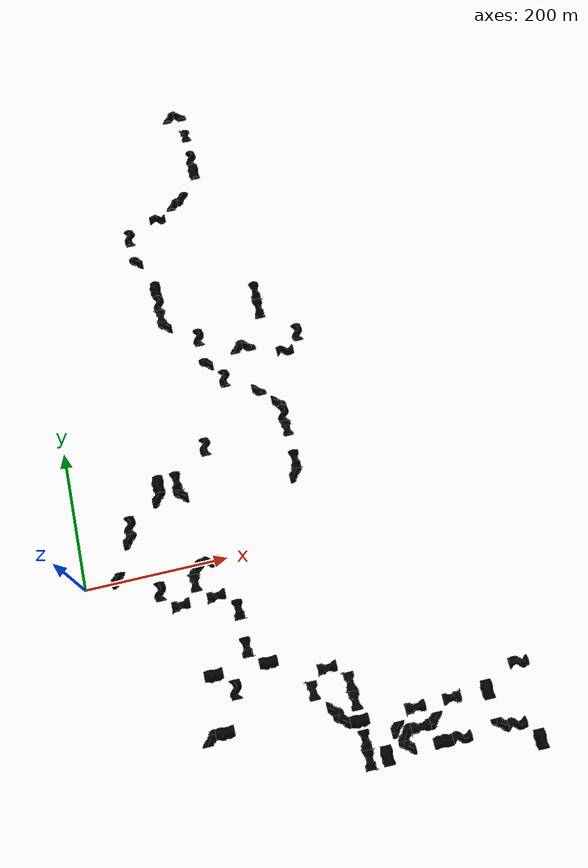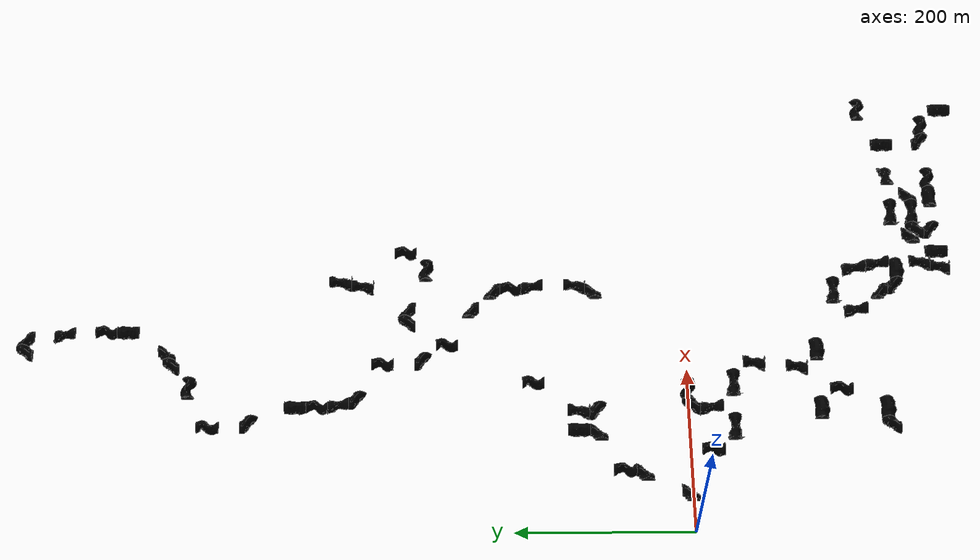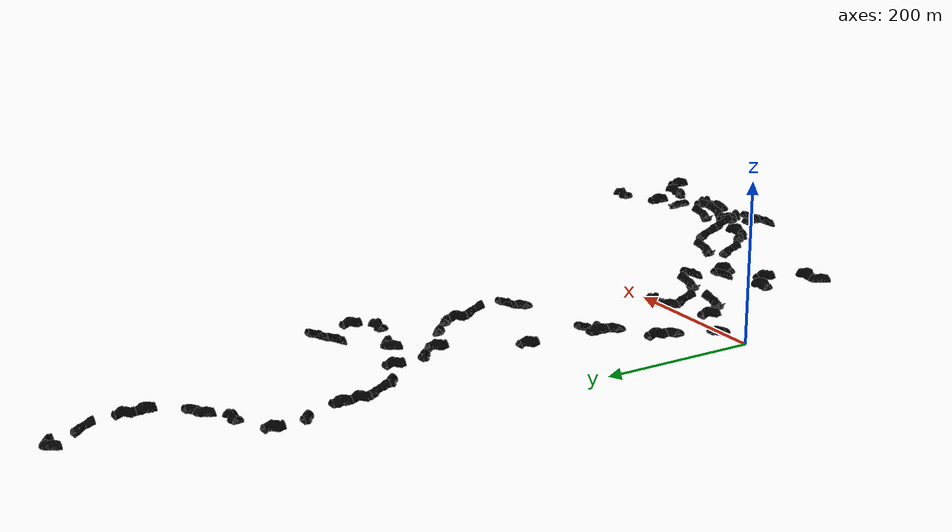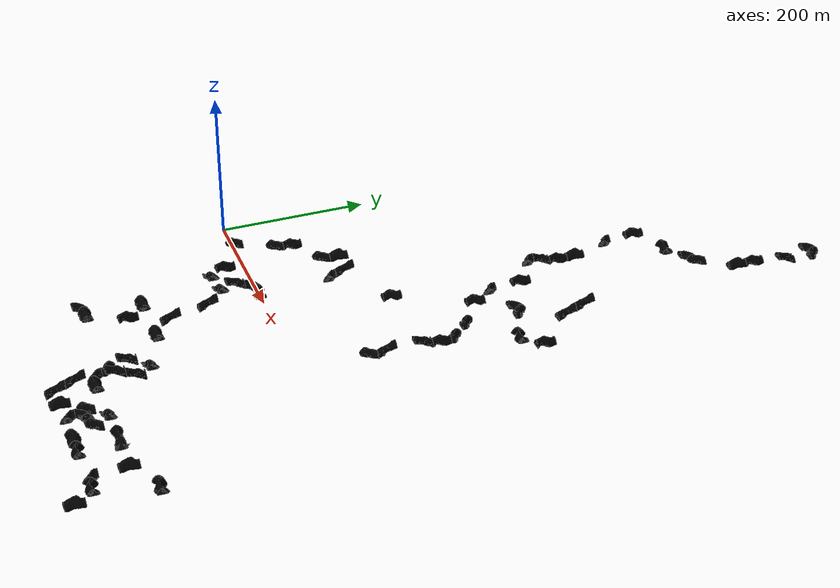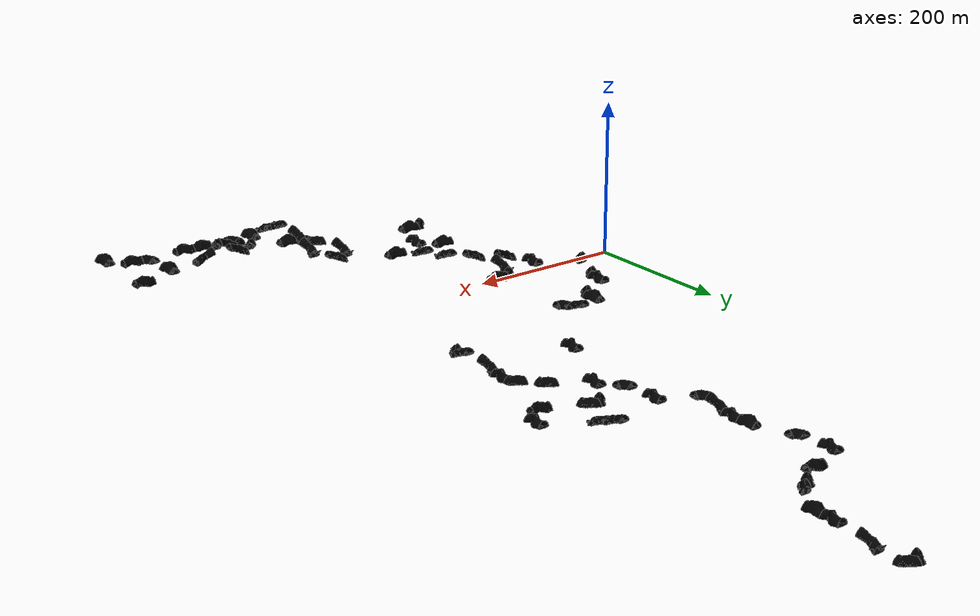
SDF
<sdf version="1.6">
 <world name="cave_circuit_01">
  <physics name="1ms" type="ode">
   <max_step_size>0.004</max_step_size>
   <real_time_factor>1.0</real_time_factor>
  </physics>
  <scene>
   <ambient>0.1 0.1 0.1 1.0</ambient>
   <background>0 0 0 1.0</background>
   <grid>false</grid>
   <origin_visual>false</origin_visual>
  </scene>
  <atmosphere type="adiabatic">
   <temperature>288</temperature>
   <temperature_gradient>0.3</temperature_gradient>
  </atmosphere>
  <plugin filename="gz-sim-physics-system" name="gz::sim::systems::Physics"/>
  <plugin filename="gz-sim-scene-broadcaster-system" name="gz::sim::systems::SceneBroadcaster"/>
  <plugin filename="gz-sim-imu-system" name="gz::sim::systems::Imu"/>
  <plugin filename="gz-sim-sensors-system" name="gz::sim::systems::Sensors">
   <render_engine>ogre2</render_engine>
  </plugin>
  <model name="robot_diferencial">
   <frame name="lidar_frame" attached_to="chassis"><pose>0.8 0 0.5 0 0 0</pose></frame>
   <link name="chassis">
    <pose relative_to="__model__">0.5 0 0.4 0 0 0</pose>
    <inertial>
     <mass>1.14395</mass>
     <inertia>
      <ixx>0.095329</ixx>
      <ixy>0</ixy>
      <ixz>0</ixz>
      <iyy>0.381317</iyy>
      <iyz>0</iyz>
      <izz>0.476646</izz>
     </inertia>
    </inertial>
    <visual name="visual">
     <geometry><box><size>2.0 1.0 0.5</size></box></geometry>
     <material>
      <ambient>0.0 0.0 1.0 1</ambient>
      <diffuse>0.0 0.0 1.0 1</diffuse>
      <specular>0.0 0.0 1.0 1</specular>
     </material>
    </visual>
    <collision name="collision"><geometry><box><size>2.0 1.0 0.5</size></box></geometry></collision>
    <sensor name="imu_sensor" type="imu">
     <always_on>1</always_on>
     <update_rate>1</update_rate>
     <visualize>true</visualize>
     <topic>imu</topic>
    </sensor>
    <sensor name="front_camera" type="camera">
     <pose>0.9 0 0.6 0 0 0</pose>
     <camera>
      <horizontal_fov>1.047</horizontal_fov>
      <image><width>640</width><height>480</height><format>R8G8B8</format></image>
      <clip><near>0.1</near><far>100</far></clip>
     </camera>
     <always_on>true</always_on>
     <update_rate>30</update_rate>
     <visualize>true</visualize>
     <topic>camera/image_raw</topic>
    </sensor>
    <sensor name="depth_camera" type="depth_camera">
     <pose relative_to="chassis">0.9 0 0.7 0 0 0</pose>
     <camera>
      <horizontal_fov>1.047</horizontal_fov>
      <image><width>640</width><height>480</height><format>R_FLOAT32</format></image>
      <clip><near>0.1</near><far>20.0</far></clip>
     </camera>
     <always_on>1</always_on>
     <update_rate>30</update_rate>
     <visualize>true</visualize>
     <topic>camera/depth/image_raw</topic>
    </sensor>
    <sensor name="gpu_lidar" type="gpu_lidar">
     <pose relative_to="lidar_frame">0 0 0 0 0 0</pose>
     <topic>lidar</topic>
     <update_rate>10</update_rate>
     <ray>
      <scan>
       <horizontal>
        <samples>1024</samples>
        <resolution>1</resolution>
        <min_angle>-3.14159</min_angle>
        <max_angle>3.14159</max_angle>
       </horizontal>
       <vertical>
        <samples>16</samples>
        <resolution>1</resolution>
        <min_angle>-0.261799</min_angle>
        <max_angle>0.261799</max_angle>
       </vertical>
      </scan>
      <range><min>0.08</min><max>100.0</max><resolution>0.01</resolution></range>
     </ray>
     <always_on>1</always_on>
     <visualize>true</visualize>
    </sensor>
   </link>
   <link name="left_wheel">
    <pose relative_to="chassis">-0.5 0.6 0 -1.5707 0 0</pose>
    <inertial>
     <mass>1</mass>
     <inertia><ixx>0.043333</ixx><ixy>0</ixy><ixz>0</ixz><iyy>0.043333</iyy><iyz>0</iyz><izz>0.08</izz></inertia>
    </inertial>
    <visual name="visual">
     <geometry><cylinder><radius>0.4</radius><length>0.2</length></cylinder></geometry>
     <material>
      <ambient>1.0 0.0 0.0 1</ambient>
      <diffuse>1.0 0.0 0.0 1</diffuse>
      <specular>1.0 0.0 0.0 1</specular>
     </material>
    </visual>
    <collision name="collision">
     <geometry><cylinder><radius>0.4</radius><length>0.2</length></cylinder></geometry>
    </collision>
   </link>
   <link name="right_wheel">
    <pose relative_to="chassis">-0.5 -0.6 0 -1.5707 0 0</pose>
    <inertial>
     <mass>1</mass>
     <inertia><ixx>0.043333</ixx><ixy>0</ixy><ixz>0</ixz><iyy>0.043333</iyy><iyz>0</iyz><izz>0.08</izz></inertia>
    </inertial>
    <visual name="visual">
     <geometry><cylinder><radius>0.4</radius><length>0.2</length></cylinder></geometry>
     <material>
      <ambient>1.0 0.0 0.0 1</ambient>
      <diffuse>1.0 0.0 0.0 1</diffuse>
      <specular>1.0 0.0 0.0 1</specular>
     </material>
    </visual>
    <collision name="collision">
     <geometry><cylinder><radius>0.4</radius><length>0.2</length></cylinder></geometry>
    </collision>
   </link>
   <link name="caster">
    <pose relative_to="chassis">0.8 0 -0.2 0 0 0</pose>
    <inertial>
     <mass>1</mass>
     <inertia><ixx>0.016</ixx><ixy>0</ixy><ixz>0</ixz><iyy>0.016</iyy><iyz>0</iyz><izz>0.016</izz></inertia>
    </inertial>
    <visual name="visual">
     <geometry><sphere><radius>0.2</radius></sphere></geometry>
     <material>
      <ambient>0.0 1 0.0 1</ambient>
      <diffuse>0.0 1 0.0 1</diffuse>
      <specular>0.0 1 0.0 1</specular>
     </material>
    </visual>
    <collision name="collision"><geometry><sphere><radius>0.2</radius></sphere></geometry></collision>
   </link>
   <joint name="left_wheel_joint" type="revolute">
    <pose relative_to="left_wheel"/>
    <parent>chassis</parent>
    <child>left_wheel</child>
    <axis><xyz expressed_in="__model__">0 1 0</xyz></axis>
   </joint>
   <joint name="right_wheel_joint" type="revolute">
    <pose relative_to="right_wheel"/>
    <parent>chassis</parent>
    <child>right_wheel</child>
    <axis><xyz expressed_in="__model__">0 1 0</xyz></axis>
   </joint>
   <joint name="caster_wheel" type="ball"><parent>chassis</parent><child>caster</child></joint>
   <plugin filename="gz-sim-diff-drive-system" name="gz::sim::systems::DiffDrive">
    <left_joint>left_wheel_joint</left_joint>
    <right_joint>right_wheel_joint</right_joint>
    <wheel_separation>1.2</wheel_separation>
    <wheel_radius>0.4</wheel_radius>
    <odom_publish_frequency>1</odom_publish_frequency>
    <topic>/turtle1/cmd_vel</topic>
   </plugin>
  </model>
  <include>
   <static>true</static>
   <name>tile_3</name>
   <pose>75 50 0 0 0 -0</pose>
   <uri>https://fuel.ignitionrobotics.org/1.0/OpenRobotics/models/Cave Corner 02 Lights Type B</uri>
  </include>
  <include>
   <static>true</static>
   <name>tile_5</name>
   <pose>125 125 0 0 -0 0</pose>
   <uri>https://fuel.ignitionrobotics.org/1.0/OpenRobotics/models/Cave Straight 04 Lights Type B</uri>
  </include>
  <include>
   <static>true</static>
   <name>tile_7</name>
   <pose>125 100 0 0 0 -0</pose>
   <uri>https://fuel.ignitionrobotics.org/1.0/OpenRobotics/models/Cave Corner 02 Lights Type B</uri>
  </include>
  <include>
   <static>true</static>
   <name>tile_8</name>
   <pose>75 75 0 0 -0 0</pose>
   <uri>https://fuel.ignitionrobotics.org/1.0/OpenRobotics/models/Cave Straight 03 Type B</uri>
  </include>
  <include>
   <static>true</static>
   <name>tile_9</name>
   <pose>50 0 0 0 0 -0</pose>
   <uri>https://fuel.ignitionrobotics.org/1.0/OpenRobotics/models/Cave Corner 02 Lights Type B</uri>
  </include>
  <include>
   <static>true</static>
   <name>tile_10</name>
   <pose>150 -25 0 0 0 -0</pose>
   <uri>https://fuel.ignitionrobotics.org/1.0/OpenRobotics/models/Cave Elevation Lights Type B</uri>
  </include>
  <include>
   <static>true</static>
   <name>tile_17</name>
   <pose>175 0 0 0 0 -1.5708</pose>
   <uri>https://fuel.ignitionrobotics.org/1.0/OpenRobotics/models/Cave Straight 03 Type B</uri>
  </include>
  <include>
   <static>true</static>
   <name>tile_18</name>
   <pose>100 -25 0 0 0 -0</pose>
   <uri>https://fuel.ignitionrobotics.org/1.0/OpenRobotics/models/Cave Straight 03 Type B</uri>
  </include>
  <include>
   <static>true</static>
   <name>tile_22</name>
   <pose>150 0 0 0 -0 3.14159</pose>
   <uri>https://fuel.ignitionrobotics.org/1.0/OpenRobotics/models/Cave Corner 02 Lights Type B</uri>
  </include>
  <include>
   <static>true</static>
   <name>tile_24</name>
   <pose>325 100 -30 0 -0 0</pose>
   <uri>https://fuel.ignitionrobotics.org/1.0/OpenRobotics/models/Cave Corner 02 Lights Type B</uri>
  </include>
  <include>
   <static>true</static>
   <name>tile_25</name>
   <pose>300 250 -30 0 -0 1.5708</pose>
   <uri>https://fuel.ignitionrobotics.org/1.0/OpenRobotics/models/Cave Corner 02 Lights Type B</uri>
  </include>
  <include>
   <static>true</static>
   <name>tile_26</name>
   <pose>325 225 -30 0 -0 1.5708</pose>
   <uri>https://fuel.ignitionrobotics.org/1.0/OpenRobotics/models/Cave Corner 02 Lights Type B</uri>
  </include>
  <include>
   <static>true</static>
   <name>tile_28</name>
   <pose>325 200 -30 0 0 -0</pose>
   <uri>https://fuel.ignitionrobotics.org/1.0/OpenRobotics/models/Cave Straight 03 Type B</uri>
  </include>
  <include>
   <static>true</static>
   <name>tile_29</name>
   <pose>325 175 -30 0 0 -0</pose>
   <uri>https://fuel.ignitionrobotics.org/1.0/OpenRobotics/models/Cave Elevation Lights Type B</uri>
  </include>
  <include>
   <static>true</static>
   <name>tile_30</name>
   <pose>325 125 -30 0 -0 3.14159</pose>
   <uri>https://fuel.ignitionrobotics.org/1.0/OpenRobotics/models/Cave Elevation Lights Type B</uri>
  </include>
  <include>
   <static>true</static>
   <name>tile_38</name>
   <pose>200 175 -30 0 0 -3.14159</pose>
   <uri>https://fuel.ignitionrobotics.org/1.0/OpenRobotics/models/Cave Straight 03 Type B</uri>
  </include>
  <include>
   <static>true</static>
   <name>tile_40</name>
   <pose>125 -50 0 0 -0 1.5708</pose>
   <uri>https://fuel.ignitionrobotics.org/1.0/OpenRobotics/models/Cave Elevation Lights Type B</uri>
  </include>
  <include>
   <static>true</static>
   <name>tile_41</name>
   <pose>175 -50 10 0 -0 1.5708</pose>
   <uri>https://fuel.ignitionrobotics.org/1.0/OpenRobotics/models/Cave Elevation Lights Type B</uri>
  </include>
  <include>
   <static>true</static>
   <name>tile_46</name>
   <pose>150 125 -10 0 -0 3.14159</pose>
   <uri>https://fuel.ignitionrobotics.org/1.0/OpenRobotics/models/Cave Elevation Lights Type B</uri>
  </include>
  <include>
   <static>true</static>
   <name>tile_47</name>
   <pose>150 100 -10 0 0 -1.5708</pose>
   <uri>https://fuel.ignitionrobotics.org/1.0/OpenRobotics/models/Cave Corner 02 Lights Type B</uri>
  </include>
  <include>
   <static>true</static>
   <name>tile_51</name>
   <pose>250 275 -30 0 -0 3.14159</pose>
   <uri>https://fuel.ignitionrobotics.org/1.0/OpenRobotics/models/Cave Straight 03 Type B</uri>
  </include>
  <include>
   <static>true</static>
   <name>tile_53</name>
   <pose>225 300 -30 0 0 -1.5708</pose>
   <uri>https://fuel.ignitionrobotics.org/1.0/OpenRobotics/models/Cave Corner 02 Lights Type B</uri>
  </include>
  <include>
   <static>true</static>
   <name>tile_54</name>
   <pose>275 325 -30 0 0 -3.14159</pose>
   <uri>https://fuel.ignitionrobotics.org/1.0/OpenRobotics/models/Cave Corner 02 Lights Type B</uri>
  </include>
  <include>
   <static>true</static>
   <name>tile_55</name>
   <pose>300 325 -30 0 -0 1.5708</pose>
   <uri>https://fuel.ignitionrobotics.org/1.0/OpenRobotics/models/Cave Corner 02 Lights Type B</uri>
  </include>
  <include>
   <static>true</static>
   <name>tile_58</name>
   <pose>350 300 -30 0 0 -1.5708</pose>
   <uri>https://fuel.ignitionrobotics.org/1.0/OpenRobotics/models/Cave Straight 03 Type B</uri>
  </include>
  <include>
   <static>true</static>
   <name>tile_63</name>
   <pose>375 325 -30 0 -0 0</pose>
   <uri>https://fuel.ignitionrobotics.org/1.0/OpenRobotics/models/Cave Straight 03 Type B</uri>
  </include>
  <include>
   <static>true</static>
   <name>tile_65</name>
   <pose>325 400 -20 0 -0 3.14159</pose>
   <uri>https://fuel.ignitionrobotics.org/1.0/OpenRobotics/models/Cave Elevation Type B</uri>
  </include>
  <include>
   <static>true</static>
   <name>tile_66</name>
   <pose>325 375 -30 0 -0 3.14159</pose>
   <uri>https://fuel.ignitionrobotics.org/1.0/OpenRobotics/models/Cave Elevation Type B</uri>
  </include>
  <include>
   <static>true</static>
   <name>tile_69</name>
   <pose>225 350 -30 0 -0 0</pose>
   <uri>https://fuel.ignitionrobotics.org/1.0/OpenRobotics/models/Cave Straight 03 Type B</uri>
  </include>
  <include>
   <static>true</static>
   <name>tile_72</name>
   <pose>175 375 -30 0 0 -1.5708</pose>
   <uri>https://fuel.ignitionrobotics.org/1.0/OpenRobotics/models/Cave Corner 02 Type B</uri>
  </include>
  <include>
   <static>true</static>
   <name>tile_73</name>
   <pose>175 400 -40 0 0 -0</pose>
   <uri>https://fuel.ignitionrobotics.org/1.0/OpenRobotics/models/Cave Elevation Type B</uri>
  </include>
  <include>
   <static>true</static>
   <name>tile_74</name>
   <pose>175 425 -40 0 0 -0</pose>
   <uri>https://fuel.ignitionrobotics.org/1.0/OpenRobotics/models/Cave Straight 03 Type B</uri>
  </include>
  <include>
   <static>true</static>
   <name>tile_77</name>
   <pose>150 500 -40 0 0 -1.5708</pose>
   <uri>https://fuel.ignitionrobotics.org/1.0/OpenRobotics/models/Cave Corner 02 Type B</uri>
  </include>
  <include>
   <static>true</static>
   <name>tile_79</name>
   <pose>150 550 -40 0 -0 3.14159</pose>
   <uri>https://fuel.ignitionrobotics.org/1.0/OpenRobotics/models/Cave Straight 03 Type B</uri>
  </include>
  <include>
   <static>true</static>
   <name>tile_80</name>
   <pose>175 450 -40 0 -0 0</pose>
   <uri>https://fuel.ignitionrobotics.org/1.0/OpenRobotics/models/Cave Straight 04 Type B</uri>
  </include>
  <include>
   <static>true</static>
   <name>tile_83</name>
   <pose>200 575 -40 0 -0 1.5708</pose>
   <uri>https://fuel.ignitionrobotics.org/1.0/OpenRobotics/models/Cave Straight 03 Type B</uri>
  </include>
  <include>
   <static>true</static>
   <name>tile_85</name>
   <pose>225 600 -40 0 0 -3.14159</pose>
   <uri>https://fuel.ignitionrobotics.org/1.0/OpenRobotics/models/Cave Corner 02 Type B</uri>
  </include>
  <include>
   <static>true</static>
   <name>tile_86</name>
   <pose>250 600 -40 0 -0 0</pose>
   <uri>https://fuel.ignitionrobotics.org/1.0/OpenRobotics/models/Cave Corner 02 Type B</uri>
  </include>
  <include>
   <static>true</static>
   <name>tile_89</name>
   <pose>275 725 -50 0 0 -0</pose>
   <uri>https://fuel.ignitionrobotics.org/1.0/OpenRobotics/models/Cave Elevation Type B</uri>
  </include>
  <include>
   <static>true</static>
   <name>tile_91</name>
   <pose>275 675 -40 0 0 -0</pose>
   <uri>https://fuel.ignitionrobotics.org/1.0/OpenRobotics/models/Cave Straight 03 Type B</uri>
  </include>
  <include>
   <static>true</static>
   <name>tile_92</name>
   <pose>275 650 -40 0 -0 0</pose>
   <uri>https://fuel.ignitionrobotics.org/1.0/OpenRobotics/models/Cave Straight 04 Type B</uri>
  </include>
  <include>
   <static>true</static>
   <name>tile_94</name>
   <pose>250 775 -50 0 -0 3.14159</pose>
   <uri>https://fuel.ignitionrobotics.org/1.0/OpenRobotics/models/Cave Corner 02 Type B</uri>
  </include>
  <include>
   <static>true</static>
   <name>tile_95</name>
   <pose>275 775 -50 0 -0 1.5708</pose>
   <uri>https://fuel.ignitionrobotics.org/1.0/OpenRobotics/models/Cave Corner 02 Type B</uri>
  </include>
  <include>
   <static>true</static>
   <name>tile_101</name>
   <pose>225 -150 0 0 -0 1.5708</pose>
   <uri>https://fuel.ignitionrobotics.org/1.0/OpenRobotics/models/Cave Straight 04 Type B</uri>
  </include>
  <include>
   <static>true</static>
   <name>tile_104</name>
   <pose>300 -175 0 0 -0 1.5708</pose>
   <uri>https://fuel.ignitionrobotics.org/1.0/OpenRobotics/models/Cave Elevation Type B</uri>
  </include>
  <include>
   <static>true</static>
   <name>tile_105</name>
   <pose>275 -200 0 0 -0 0</pose>
   <uri>https://fuel.ignitionrobotics.org/1.0/OpenRobotics/models/Cave Elevation Type B</uri>
  </include>
  <include>
   <static>true</static>
   <name>tile_107</name>
   <pose>300 -225 10 0 -0 1.5708</pose>
   <uri>https://fuel.ignitionrobotics.org/1.0/OpenRobotics/models/Cave Corner 02 Type B</uri>
  </include>
  <include>
   <static>true</static>
   <name>tile_110</name>
   <pose>175 -175 0 0 -0 0</pose>
   <uri>https://fuel.ignitionrobotics.org/1.0/OpenRobotics/models/Cave Straight 03 Type B</uri>
  </include>
  <include>
   <static>true</static>
   <name>tile_112</name>
   <pose>150 -150 0 0 -0 1.5708</pose>
   <uri>https://fuel.ignitionrobotics.org/1.0/OpenRobotics/models/Cave Straight 04 Type B</uri>
  </include>
  <include>
   <static>true</static>
   <name>tile_115</name>
   <pose>325 -250 10 0 -0 1.5708</pose>
   <uri>https://fuel.ignitionrobotics.org/1.0/OpenRobotics/models/Cave Straight 04 Type B</uri>
  </include>
  <include>
   <static>true</static>
   <name>tile_116</name>
   <pose>325 -200 10 0 0 -0</pose>
   <uri>https://fuel.ignitionrobotics.org/1.0/OpenRobotics/models/Cave Elevation Type B</uri>
  </include>
  <include>
   <static>true</static>
   <name>tile_117</name>
   <pose>325 -225 20 0 0 -0</pose>
   <uri>https://fuel.ignitionrobotics.org/1.0/OpenRobotics/models/Cave Elevation Type B</uri>
  </include>
  <include>
   <static>true</static>
   <name>tile_118</name>
   <pose>300 -250 10 0 0 -1.5708</pose>
   <uri>https://fuel.ignitionrobotics.org/1.0/OpenRobotics/models/Cave Corner 02 Type B</uri>
  </include>
  <include>
   <static>true</static>
   <name>tile_125</name>
   <pose>425 -275 20 0 -0 0</pose>
   <uri>https://fuel.ignitionrobotics.org/1.0/OpenRobotics/models/Cave Corner 02 Type B</uri>
  </include>
  <include>
   <static>true</static>
   <name>tile_126</name>
   <pose>400 -250 10 0 -0 1.5708</pose>
   <uri>https://fuel.ignitionrobotics.org/1.0/OpenRobotics/models/Cave Elevation Type B</uri>
  </include>
  <include>
   <static>true</static>
   <name>tile_127</name>
   <pose>400 -275 10 0 -0 1.5708</pose>
   <uri>https://fuel.ignitionrobotics.org/1.0/OpenRobotics/models/Cave Elevation Type B</uri>
  </include>
  <include>
   <static>true</static>
   <name>tile_128</name>
   <pose>375 -275 10 0 -0 0</pose>
   <uri>https://fuel.ignitionrobotics.org/1.0/OpenRobotics/models/Cave Corner 02 Type B</uri>
  </include>
  <include>
   <static>true</static>
   <name>tile_129</name>
   <pose>375 -275 10 0 -0 3.14159</pose>
   <uri>https://fuel.ignitionrobotics.org/1.0/OpenRobotics/models/Cave Corner 02 Type B</uri>
  </include>
  <include>
   <static>true</static>
   <name>tile_131</name>
   <pose>450 -250 10 0 -0 -1.5708</pose>
   <uri>https://fuel.ignitionrobotics.org/1.0/OpenRobotics/models/Cave Elevation Type B</uri>
  </include>
  <include>
   <static>true</static>
   <name>tile_132</name>
   <pose>350 -300 10 0 -0 0</pose>
   <uri>https://fuel.ignitionrobotics.org/1.0/OpenRobotics/models/Cave Straight 04 Type B</uri>
  </include>
  <include>
   <static>true</static>
   <name>tile_133</name>
   <pose>375 -300 10 0 0 -1.5708</pose>
   <uri>https://fuel.ignitionrobotics.org/1.0/OpenRobotics/models/Cave Corner 02 Type B</uri>
  </include>
  <include>
   <static>true</static>
   <name>tile_136</name>
   <pose>450 -300 10 0 0 -1.5708</pose>
   <uri>https://fuel.ignitionrobotics.org/1.0/OpenRobotics/models/Cave Straight 03 Type B</uri>
  </include>
  <include>
   <static>true</static>
   <name>tile_138</name>
   <pose>425 -300 10 0 0 -1.5708</pose>
   <uri>https://fuel.ignitionrobotics.org/1.0/OpenRobotics/models/Cave Straight 04 Type B</uri>
  </include>
  <include>
   <static>true</static>
   <name>tile_141</name>
   <pose>150 -225 0 0 -0 1.5708</pose>
   <uri>https://fuel.ignitionrobotics.org/1.0/OpenRobotics/models/Cave Straight 04 Type B</uri>
  </include>
  <include>
   <static>true</static>
   <name>tile_142</name>
   <pose>125 -225 0 0 -0 3.14159</pose>
   <uri>https://fuel.ignitionrobotics.org/1.0/OpenRobotics/models/Cave Corner 02 Type B</uri>
  </include>
  <include>
   <static>true</static>
   <name>tile_147</name>
   <pose>500 -300 10 0 0 -1.5708</pose>
   <uri>https://fuel.ignitionrobotics.org/1.0/OpenRobotics/models/Cave Corner 02 Type B</uri>
  </include>
  <include>
   <static>true</static>
   <name>tile_148</name>
   <pose>525 -300 10 0 0 -1.5708</pose>
   <uri>https://fuel.ignitionrobotics.org/1.0/OpenRobotics/models/Cave Straight 03 Type B</uri>
  </include>
  <include>
   <static>true</static>
   <name>tile_149</name>
   <pose>500 -250 10 0 -0 0</pose>
   <uri>https://fuel.ignitionrobotics.org/1.0/OpenRobotics/models/Cave Straight 04 Type B</uri>
  </include>
  <include>
   <static>true</static>
   <name>tile_150</name>
   <pose>550 -325 10 0 -0 0</pose>
   <uri>https://fuel.ignitionrobotics.org/1.0/OpenRobotics/models/Cave Straight 04 Type B</uri>
  </include>
  <include>
   <static>true</static>
   <name>tile_153</name>
   <pose>550 -225 10 0 -0 1.5708</pose>
   <uri>https://fuel.ignitionrobotics.org/1.0/OpenRobotics/models/Cave Straight 03 Type B</uri>
  </include>
  <include>
   <static>true</static>
   <name>tile_154</name>
   <pose>200 -125 0 0 0 -3.14159</pose>
   <uri>https://fuel.ignitionrobotics.org/1.0/OpenRobotics/models/Cave Elevation Type B</uri>
  </include>
  <include>
   <static>true</static>
   <name>tile_155</name>
   <pose>200 -75 10 0 0 -3.14159</pose>
   <uri>https://fuel.ignitionrobotics.org/1.0/OpenRobotics/models/Cave Elevation Type B</uri>
  </include>
  <include>
   <static>true</static>
   <name>tile_156</name>
   <pose>325 -275 20 0 -0 3.14159</pose>
   <uri>https://fuel.ignitionrobotics.org/1.0/OpenRobotics/models/Cave Elevation Type B</uri>
  </include>
  <include>
   <static>true</static>
   <name>tile_157</name>
   <pose>325 -300 10 0 -0 3.14159</pose>
   <uri>https://fuel.ignitionrobotics.org/1.0/OpenRobotics/models/Cave Elevation Type B</uri>
  </include>
 </world>
</sdf>

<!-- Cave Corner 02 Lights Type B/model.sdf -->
<sdf version="1.6">
  <model name="Cave Corner 02 Lights Type B">
    <include>
      <name>cave_corner_02</name>
      <uri>model://Cave Corner 02 Type B</uri>
    </include>
    <static>true</static>
    <link name="lights">
      <light name="spot_light1" type="spot">
        <pose>-2 6.0 3.5 0 0 0</pose>
        <diffuse>0 0 0 1</diffuse>
        <specular>0 0 0 1</specular>
        <attenuation>
          <range>20</range>
          <linear>0.2</linear>
          <constant>0.5</constant>
          <quadratic>0.02</quadratic>
        </attenuation>
        <spot>
          <inner_angle>2.0</inner_angle>
          <outer_angle>3.1</outer_angle>
          <falloff>1.0</falloff>
        </spot>
        <cast_shadows>false</cast_shadows>
      </light>

      <light name="spot_light2" type="spot">
        <pose>-6.5 -.25 4.5 0 0 0</pose>
        <diffuse>0 0 0 1</diffuse>
        <specular>0 0 0 1</specular>
        <attenuation>
          <range>20</range>
          <linear>0.2</linear>
          <constant>0.5</constant>
          <quadratic>0.02</quadratic>
        </attenuation>
        <spot>
          <inner_angle>2.0</inner_angle>
          <outer_angle>3.1</outer_angle>
          <falloff>1.0</falloff>
        </spot>
        <cast_shadows>false</cast_shadows>
      </light>
    </link>
  </model>
</sdf>

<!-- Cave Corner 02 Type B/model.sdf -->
<sdf version="1.6">
  <model name="Cave Corner 02 Type B">
    <static>true</static>
    <link name="base_link">
      <collision name="collision">
        <pose>0 0 0 0 0 0</pose>
        <geometry>
          <mesh>
            <uri>model://cave_corner_02/meshes/cavecorner02.dae</uri>
            <scale>1.005 1.005 1.0</scale>
          </mesh>
        </geometry>
      </collision>
      <visual name="CaveWall_visual">
        <geometry>
          <mesh>
            <uri>model://cave_corner_02/meshes/cavecorner02.dae</uri>
            <submesh>
              <name>CaveWall</name>
              <center>false</center>
            </submesh>
            <scale>1.005 1.005 1.0</scale>
          </mesh>
        </geometry>
        <material>
          <diffuse>0 0 0 1</diffuse>
          <specular>0 0 0 1</specular>
          <pbr>
            <metal>
              <albedo_map>model://cave_corner_02/materials/textures/CaveWall_Albedo.png</albedo_map>
              <normal_map>model://cave_corner_02/materials/textures/CaveWall_Normal.png</normal_map>
              <roughness_map>model://cave_corner_02/materials/textures/CaveWall_Roughness.png</roughness_map>
            </metal>
          </pbr>

          <script>
            <uri>model://cave_corner_02/materials/scripts/</uri>
            <uri>model://cave_corner_02/materials/textures/</uri>
            <name>CaveTile/CaveWall_Diffuse</name>
          </script>
        </material>
      </visual>
      <visual name="StriatedRock_visual">
        <geometry>
          <mesh>
            <uri>model://cave_corner_02/meshes/cavecorner02.dae</uri>
            <submesh>
              <name>StriatedRock</name>
              <center>false</center>
            </submesh>
            <scale>1.005 1.005 1.0</scale>
          </mesh>
        </geometry>
        <material>
          <diffuse>0 0 0 1</diffuse>
          <specular>0 0 0 1</specular>
          <pbr>
            <metal>
              <albedo_map>model://cave_corner_02/materials/textures/StriatedRock_Albedo.png</albedo_map>
              <normal_map>model://cave_corner_02/materials/textures/StriatedRock_Normal.png</normal_map>
              <roughness_map>model://cave_corner_02/materials/textures/StriatedRock_Roughness.png</roughness_map>
            </metal>
          </pbr>

          <script>
            <uri>model://cave_corner_02/materials/scripts/</uri>
            <uri>model://cave_corner_02/materials/textures/</uri>
            <name>CaveTile/StriatedRock_Diffuse</name>
          </script>
        </material>
      </visual>
      <visual name="RockPile_visual">
        <geometry>
          <mesh>
            <uri>model://cave_corner_02/meshes/cavecorner02.dae</uri>
            <submesh>
              <name>RockPile</name>
              <center>false</center>
            </submesh>
            <scale>1.005 1.005 1.0</scale>
          </mesh>
        </geometry>
        <material>
          <diffuse>0 0 0 1</diffuse>
          <specular>0 0 0 1</specular>
          <pbr>
            <metal>
              <albedo_map>model://cave_corner_02/materials/textures/RockPile_Albedo.png</albedo_map>
              <normal_map>model://cave_corner_02/materials/textures/RockPile_Normal.png</normal_map>
              <roughness_map>model://cave_corner_02/materials/textures/RockPile_Roughness.png</roughness_map>
            </metal>
          </pbr>

          <script>
            <uri>model://cave_corner_02/materials/scripts/</uri>
            <uri>model://cave_corner_02/materials/textures/</uri>
            <name>CaveTile/RockPile_Diffuse</name>
          </script>
        </material>
      </visual>
    </link>
  </model>
</sdf>

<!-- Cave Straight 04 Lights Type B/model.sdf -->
<sdf version="1.6">
  <model name="Cave Straight 04 Lights Type B">
    <include>
      <name>cave_straight_04</name>
      <uri>model://Cave Straight 04 Type B</uri>
    </include>
    <static>true</static>
    <link name="lights">
      <light name="spot_light1" type="spot">
        <pose>0 8 8.0 0 0 0</pose>
        <diffuse>0 0 0 1</diffuse>
        <specular>0 0 0 1</specular>
        <attenuation>
          <range>20</range>
          <linear>0.2</linear>
          <constant>0.3</constant>
          <quadratic>0.01</quadratic>
        </attenuation>
        <spot>
          <inner_angle>2.0</inner_angle>
          <outer_angle>3.1</outer_angle>
          <falloff>0.6</falloff>
        </spot>
        <cast_shadows>false</cast_shadows>
      </light>

      <light name="spot_light2" type="spot">
        <pose>0 -6.0 4.5 0 0 0</pose>
        <diffuse>0 0 0 1</diffuse>
        <specular>0 0 0 1</specular>
        <attenuation>
          <range>20</range>
          <linear>0.2</linear>
          <constant>0.3</constant>
          <quadratic>0.01</quadratic>
        </attenuation>
        <spot>
          <inner_angle>2.0</inner_angle>
          <outer_angle>3.1</outer_angle>
          <falloff>0.6</falloff>
        </spot>
        <cast_shadows>false</cast_shadows>
      </light>
    </link>
  </model>
</sdf>

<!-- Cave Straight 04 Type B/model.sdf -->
<sdf version="1.6">
  <model name="Cave Straight 04 Type B">
    <static>true</static>
    <link name="base_link">
      <collision name="collision">
        <pose>0 0 0 0 0 0</pose>
        <geometry>
          <mesh>
            <uri>model://Cave Straight 04 Type B/meshes/cavestraight04.dae</uri>
            <scale>1.0 1.0 1.0</scale>
          </mesh>
        </geometry>
      </collision>
      <visual name="StriatedRock_visual">
        <geometry>
          <mesh>
            <uri>model://Cave Straight 04 Type B/meshes/cavestraight04.dae</uri>
            <submesh>
              <name>StriatedRock</name>
              <center>false</center>
            </submesh>
          </mesh>
        </geometry>
        <material>
          <diffuse>0 0 0 1</diffuse>
          <specular>0 0 0 1</specular>
          <pbr>
            <metal>
              <albedo_map>model://Cave Straight 04 Type B/materials/textures/StriatedRock_Albedo.png</albedo_map>
              <normal_map>model://Cave Straight 04 Type B/materials/textures/StriatedRock_Normal.png</normal_map>
              <roughness_map>model://Cave Straight 04 Type B/materials/textures/StriatedRock_Roughness.png</roughness_map>
            </metal>
          </pbr>

          <script>
            <uri>model://Cave Straight 04 Type B/materials/scripts/</uri>
            <uri>model://Cave Straight 04 Type B/materials/textures/</uri>
            <name>CaveTile/StriatedRock_Diffuse</name>
          </script>
        </material>
      </visual>
      <visual name="RockPile_visual">
        <geometry>
          <mesh>
            <uri>model://Cave Straight 04 Type B/meshes/cavestraight04.dae</uri>
            <submesh>
              <name>RockPile</name>
              <center>false</center>
            </submesh>
          </mesh>
        </geometry>
        <material>
          <diffuse>0 0 0 1</diffuse>
          <specular>0 0 0 1</specular>
          <pbr>
            <metal>
              <albedo_map>model://Cave Straight 04 Type B/materials/textures/RockPile_Albedo.png</albedo_map>
              <normal_map>model://Cave Straight 04 Type B/materials/textures/RockPile_Normal.png</normal_map>
              <roughness_map>model://Cave Straight 04 Type B/materials/textures/RockPile_Roughness.png</roughness_map>
            </metal>
          </pbr>

          <script>
            <uri>model://Cave Straight 04 Type B/materials/scripts/</uri>
            <uri>model://Cave Straight 04 Type B/materials/textures/</uri>
            <name>CaveTile/RockPile_Diffuse</name>
          </script>
        </material>
      </visual>
      <visual name="CaveWall_visual">
        <geometry>
          <mesh>
            <uri>model://Cave Straight 04 Type B/meshes/cavestraight04.dae</uri>
            <submesh>
              <name>CaveWall</name>
              <center>false</center>
            </submesh>
          </mesh>
        </geometry>
        <material>
          <diffuse>0 0 0 1</diffuse>
          <specular>0 0 0 1</specular>
          <pbr>
            <metal>
              <albedo_map>model://Cave Straight 04 Type B/materials/textures/CaveWall_Albedo.png</albedo_map>
              <normal_map>model://Cave Straight 04 Type B/materials/textures/CaveWall_Normal.png</normal_map>
              <roughness_map>model://Cave Straight 04 Type B/materials/textures/CaveWall_Roughness.png</roughness_map>
            </metal>
          </pbr>

          <script>
            <uri>model://Cave Straight 04 Type B/materials/scripts/</uri>
            <uri>model://Cave Straight 04 Type B/materials/textures/</uri>
            <name>CaveTile/CaveWall_Diffuse</name>
          </script>
        </material>
      </visual>
    </link>
  </model>
</sdf>

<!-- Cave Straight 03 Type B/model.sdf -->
<sdf version="1.6">
  <model name="Cave Straight 03 Type B">
    <static>true</static>
    <link name="base_link">
      <collision name="collision">
        <pose>0 0 0 0 0 0</pose>
        <geometry>
          <mesh>
            <uri>model://Cave Straight 03 Type B/meshes/cavestraight03.dae</uri>
            <scale>1.005 1.005 1.0</scale>
          </mesh>
        </geometry>
      </collision>
      <visual name="StriatedRock_visual">
        <geometry>
          <mesh>
            <uri>model://Cave Straight 03 Type B/meshes/cavestraight03.dae</uri>
            <submesh>
              <name>StriatedRock</name>
              <center>false</center>
            </submesh>
            <scale>1.005 1.005 1.0</scale>
          </mesh>
        </geometry>
        <material>
          <diffuse>0 0 0 1</diffuse>
          <specular>0 0 0 1</specular>
          <pbr>
            <metal>
              <albedo_map>model://Cave Straight 03 Type B/materials/textures/StriatedRock_Albedo.png</albedo_map>
              <normal_map>model://Cave Straight 03 Type B/materials/textures/StriatedRock_Normal.png</normal_map>
              <roughness_map>model://Cave Straight 03 Type B/materials/textures/StriatedRock_Roughness.png</roughness_map>
            </metal>
          </pbr>

          <script>
            <uri>model://Cave Straight 03 Type B/materials/scripts/</uri>
            <uri>model://Cave Straight 03 Type B/materials/textures/</uri>
            <name>CaveTile/StriatedRock_Diffuse</name>
          </script>
        </material>
      </visual>
      <visual name="RockPile_visual">
        <geometry>
          <mesh>
            <uri>model://Cave Straight 03 Type B/meshes/cavestraight03.dae</uri>
            <submesh>
              <name>RockPile</name>
              <center>false</center>
            </submesh>
            <scale>1.005 1.005 1.0</scale>
          </mesh>
        </geometry>
        <material>
          <diffuse>0 0 0 1</diffuse>
          <specular>0 0 0 1</specular>
          <pbr>
            <metal>
              <albedo_map>model://Cave Straight 03 Type B/materials/textures/RockPile_Albedo.png</albedo_map>
              <normal_map>model://Cave Straight 03 Type B/materials/textures/RockPile_Normal.png</normal_map>
              <roughness_map>model://Cave Straight 03 Type B/materials/textures/RockPile_Roughness.png</roughness_map>
            </metal>
          </pbr>

          <script>
            <uri>model://Cave Straight 03 Type B/materials/scripts/</uri>
            <uri>model://Cave Straight 03 Type B/materials/textures/</uri>
            <name>CaveTile/RockPile_Diffuse</name>
          </script>
        </material>
      </visual>
      <visual name="CaveWall_visual">
        <geometry>
          <mesh>
            <uri>model://Cave Straight 03 Type B/meshes/cavestraight03.dae</uri>
            <submesh>
              <name>CaveWall</name>
              <center>false</center>
            </submesh>
            <scale>1.005 1.005 1.0</scale>
          </mesh>
        </geometry>
        <material>
          <diffuse>0 0 0 1</diffuse>
          <specular>0 0 0 1</specular>
          <pbr>
            <metal>
              <albedo_map>model://Cave Straight 03 Type B/materials/textures/CaveWall_Albedo.png</albedo_map>
              <normal_map>model://Cave Straight 03 Type B/materials/textures/CaveWall_Normal.png</normal_map>
              <roughness_map>model://Cave Straight 03 Type B/materials/textures/CaveWall_Roughness.png</roughness_map>
            </metal>
          </pbr>

          <script>
            <uri>model://Cave Straight 03 Type B/materials/scripts/</uri>
            <uri>model://Cave Straight 03 Type B/materials/textures/</uri>
            <name>CaveTile/CaveWall_Diffuse</name>
          </script>
        </material>
      </visual>
    </link>
  </model>
</sdf>

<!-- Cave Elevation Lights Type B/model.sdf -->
<sdf version="1.6">
  <model name="Cave Elevation Lights Type B">
    <static>true</static>
    <include>
      <name>cave_elevation</name>
      <uri>model://Cave Elevation Type B</uri>
    </include>

    <link name="light1">
      <light name="spot_light1" type="spot">
        <pose>0 -8 17.5 0 0 0</pose>
        <diffuse>0 0 0 1</diffuse>
        <specular>0 0 0 1</specular>
        <attenuation>
          <range>20</range>
          <linear>0.2</linear>
          <constant>1.0</constant>
          <quadratic>0.01</quadratic>
        </attenuation>
        <spot>
          <inner_angle>2.0</inner_angle>
          <outer_angle>3.1</outer_angle>
          <falloff>1.2</falloff>
        </spot>
        <cast_shadows>false</cast_shadows>
      </light>

      <light name="spot_light2" type="spot">
        <pose>0 2 13.5 0 0 0</pose>
        <diffuse>0 0 0 1</diffuse>
        <specular>0 0 0 1</specular>
        <attenuation>
          <range>20</range>
          <linear>0.2</linear>
          <constant>1.0</constant>
          <quadratic>0.01</quadratic>
        </attenuation>
        <spot>
          <inner_angle>2.0</inner_angle>
          <outer_angle>3.1</outer_angle>
          <falloff>1.2</falloff>
        </spot>
        <cast_shadows>false</cast_shadows>
      </light>

      <light name="spot_light3" type="spot">
        <pose>0 12 9 0 0 0</pose>
        <diffuse>0 0 0 1</diffuse>
        <specular>0 0 0 1</specular>
        <attenuation>
          <range>20</range>
          <linear>0.2</linear>
          <constant>1.0</constant>
          <quadratic>0.01</quadratic>
        </attenuation>
        <spot>
          <inner_angle>2.0</inner_angle>
          <outer_angle>3.1</outer_angle>
          <falloff>1.2</falloff>
        </spot>
        <cast_shadows>false</cast_shadows>
      </light>
    </link>
  </model>
</sdf>

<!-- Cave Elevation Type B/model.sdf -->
<sdf version="1.6">
  <model name="Cave Elevation Type B">
    <static>true</static>
    <link name="base_link">
      <collision name="collision">
        <pose>0 0 0 0 0 0</pose>
        <geometry>
          <mesh>
            <uri>model://Cave Elevation Type B/meshes/caveelevation.dae</uri>
            <scale>1.0 1.0 1.0</scale>
          </mesh>
        </geometry>
      </collision>
      <visual name="CaveWall_visual">
        <geometry>
          <mesh>
            <uri>model://Cave Elevation Type B/meshes/caveelevation.dae</uri>
            <submesh>
              <name>CaveWall</name>
              <center>false</center>
            </submesh>
          </mesh>
        </geometry>
        <material>
          <diffuse>0 0 0 1</diffuse>
          <specular>0 0 0 1</specular>
          <pbr>
            <metal>
              <albedo_map>model://Cave Elevation Type B/materials/textures/CaveWall_Albedo.png</albedo_map>
              <normal_map>model://Cave Elevation Type B/materials/textures/CaveWall_Normal.png</normal_map>
              <roughness_map>model://Cave Elevation Type B/materials/textures/CaveWall_Roughness.png</roughness_map>
            </metal>
          </pbr>

          <script>
            <uri>model://Cave Elevation Type B/materials/scripts/</uri>
            <uri>model://Cave Elevation Type B/materials/textures/</uri>
            <name>CaveTile/CaveWall_Diffuse</name>
          </script>
        </material>
      </visual>
      <visual name="RockPile_visual">
        <geometry>
          <mesh>
            <uri>model://Cave Elevation Type B/meshes/caveelevation.dae</uri>
            <submesh>
              <name>RockPile</name>
              <center>false</center>
            </submesh>
          </mesh>
        </geometry>
        <material>
          <diffuse>0 0 0 1</diffuse>
          <specular>0 0 0 1</specular>
          <pbr>
            <metal>
              <albedo_map>model://Cave Elevation Type B/materials/textures/RockPile_Albedo.png</albedo_map>
              <normal_map>model://Cave Elevation Type B/materials/textures/RockPile_Normal.png</normal_map>
              <roughness_map>model://Cave Elevation Type B/materials/textures/RockPile_Roughness.png</roughness_map>
            </metal>
          </pbr>

          <script>
            <uri>model://Cave Elevation Type B/materials/scripts/</uri>
            <uri>model://Cave Elevation Type B/materials/textures/</uri>
            <name>CaveTile/RockPile_Diffuse</name>
          </script>
        </material>
      </visual>
      <visual name="StriatedRock_visual">
        <geometry>
          <mesh>
            <uri>model://Cave Elevation Type B/meshes/caveelevation.dae</uri>
            <submesh>
              <name>StriatedRock</name>
              <center>false</center>
            </submesh>
          </mesh>
        </geometry>
        <material>
          <diffuse>0 0 0 1</diffuse>
          <specular>0 0 0 1</specular>
          <pbr>
            <metal>
              <albedo_map>model://Cave Elevation Type B/materials/textures/StriatedRock_Albedo.png</albedo_map>
              <normal_map>model://Cave Elevation Type B/materials/textures/StriatedRock_Normal.png</normal_map>
              <roughness_map>model://Cave Elevation Type B/materials/textures/StriatedRock_Roughness.png</roughness_map>
            </metal>
          </pbr>

          <script>
            <uri>model://Cave Elevation Type B/materials/scripts/</uri>
            <uri>model://Cave Elevation Type B/materials/textures/</uri>
            <name>CaveTile/StriatedRock_Diffuse</name>
          </script>
        </material>
      </visual>
    </link>

    <plugin filename="libignition-gazebo-performer-detector-system.so" name="ignition::gazebo::systems::PerformerDetector">
      <topic>/subt_performer_detector</topic>
      <pose>0 0 10 0 0 0</pose>
      <geometry>
        <box>
          <size>20 30 20</size>
        </box>
      </geometry>
      <header_data>
        <key>type</key>
        <value>elevation</value>
      </header_data>
    </plugin>
  </model>
</sdf>
